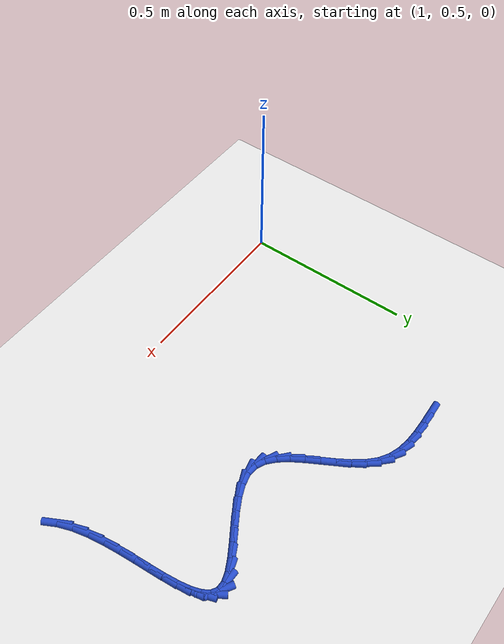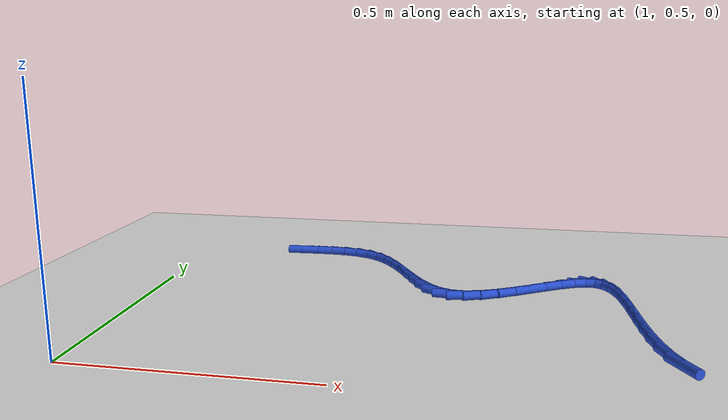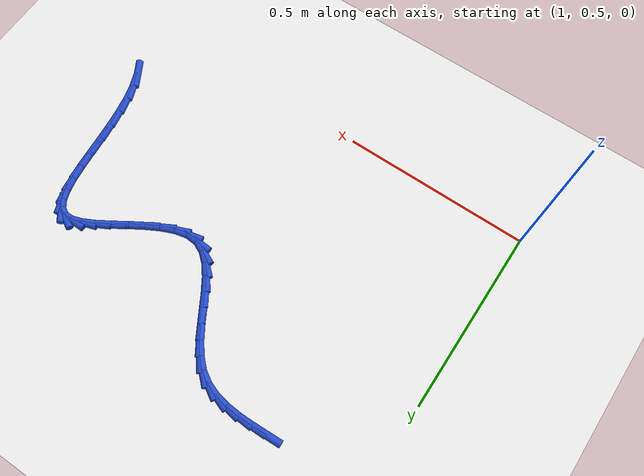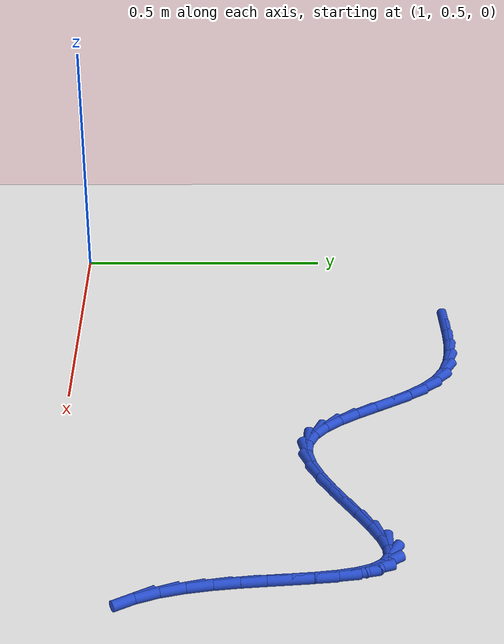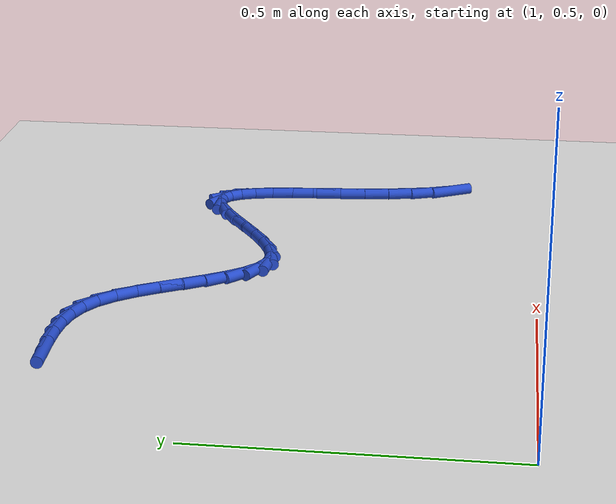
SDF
<sdf version="1.6">
 <world name="default">
  <model name="ground_plane">
   <static>1</static>
   <link name="link">
    <collision name="collision">
     <geometry><plane><normal>0 0 1</normal><size>100 100</size></plane></geometry>
     <surface><friction><ode><mu>100</mu><mu2>50</mu2></ode></friction></surface>
    </collision>
    <visual name="visual">
     <cast_shadows>0</cast_shadows>
     <geometry><plane><normal>0 0 1</normal><size>100 100</size></plane></geometry>
     <material>
      <script><uri>file://media/materials/scripts/gazebo.material</uri><name>Gazebo/WhiteGlow</name></script>
     </material>
    </visual>
   </link>
  </model>
  <model name="line">
   <link name="link_54">
    <pose>1.2547937408275065 1.2537119381579622 0.01 0 1.57 0.04368002936239693</pose>
    <collision name="collision">
     <geometry><cylinder><radius>0.01</radius><length>0.08</length></cylinder></geometry>
    </collision>
    <visual name="visual">
     <material>
      <script><name>Gazebo/Blue</name><uri>file://media/materials/scripts/gazebo.material</uri></script>
     </material>
     <geometry><cylinder><radius>0.01</radius><length>0.08</length></cylinder></geometry>
    </visual>
   </link>
   <link name="link_55">
    <pose>1.293861286342573 1.2554194958066738 0.01 0 1.57 0.007878321877856217</pose>
    <collision name="collision">
     <geometry><cylinder><radius>0.01</radius><length>0.08</length></cylinder></geometry>
    </collision>
    <visual name="visual">
     <material>
      <script><name>Gazebo/Blue</name><uri>file://media/materials/scripts/gazebo.material</uri></script>
     </material>
     <geometry><cylinder><radius>0.01</radius><length>0.08</length></cylinder></geometry>
    </visual>
   </link>
   <link name="link_56">
    <pose>1.3316690879254736 1.2557173639997534 0.01 0 1.57 -0.06508476731705301</pose>
    <collision name="collision">
     <geometry><cylinder><radius>0.01</radius><length>0.08</length></cylinder></geometry>
    </collision>
    <visual name="visual">
     <material>
      <script><name>Gazebo/Blue</name><uri>file://media/materials/scripts/gazebo.material</uri></script>
     </material>
     <geometry><cylinder><radius>0.01</radius><length>0.08</length></cylinder></geometry>
    </visual>
   </link>
   <link name="link_57">
    <pose>1.3678237200091734 1.253360919922937 0.01 0 1.57 -0.1813832845481044</pose>
    <collision name="collision">
     <geometry><cylinder><radius>0.01</radius><length>0.08</length></cylinder></geometry>
    </collision>
    <visual name="visual">
     <material>
      <script><name>Gazebo/Blue</name><uri>file://media/materials/scripts/gazebo.material</uri></script>
     </material>
     <geometry><cylinder><radius>0.01</radius><length>0.08</length></cylinder></geometry>
    </visual>
   </link>
   <link name="link_58">
    <pose>1.4019317570266374 1.2471055407619585 0.01 0 1.57 -0.34551228261787065</pose>
    <collision name="collision">
     <geometry><cylinder><radius>0.01</radius><length>0.08</length></cylinder></geometry>
    </collision>
    <visual name="visual">
     <material>
      <script><name>Gazebo/Blue</name><uri>file://media/materials/scripts/gazebo.material</uri></script>
     </material>
     <geometry><cylinder><radius>0.01</radius><length>0.08</length></cylinder></geometry>
    </visual>
   </link>
   <link name="link_59">
    <pose>1.4335997734108312 1.2357066037025533 0.01 0 1.57 -0.552730054115268</pose>
    <collision name="collision">
     <geometry><cylinder><radius>0.01</radius><length>0.08</length></cylinder></geometry>
    </collision>
    <visual name="visual">
     <material>
      <script><name>Gazebo/Blue</name><uri>file://media/materials/scripts/gazebo.material</uri></script>
     </material>
     <geometry><cylinder><radius>0.01</radius><length>0.08</length></cylinder></geometry>
    </visual>
   </link>
   <link name="link_60">
    <pose>1.4624343435947182 1.2179194859304563 0.01 0 1.57 -0.7675103519102068</pose>
    <collision name="collision">
     <geometry><cylinder><radius>0.01</radius><length>0.08</length></cylinder></geometry>
    </collision>
    <visual name="visual">
     <material>
      <script><name>Gazebo/Blue</name><uri>file://media/materials/scripts/gazebo.material</uri></script>
     </material>
     <geometry><cylinder><radius>0.01</radius><length>0.08</length></cylinder></geometry>
    </visual>
   </link>
   <link name="link_61">
    <pose>1.4882272885885828 1.193033178551508 0.01 0 1.57 -0.9184080681413549</pose>
    <collision name="collision">
     <geometry><cylinder><radius>0.01</radius><length>0.08</length></cylinder></geometry>
    </collision>
    <visual name="visual">
     <material>
      <script><name>Gazebo/Blue</name><uri>file://media/materials/scripts/gazebo.material</uri></script>
     </material>
     <geometry><cylinder><radius>0.01</radius><length>0.08</length></cylinder></geometry>
    </visual>
   </link>
   <link name="link_62">
    <pose>1.511531617426895 1.1625293206081948 0.01 0 1.57 -1.006597355352516</pose>
    <collision name="collision">
     <geometry><cylinder><radius>0.01</radius><length>0.08</length></cylinder></geometry>
    </collision>
    <visual name="visual">
     <material>
      <script><name>Gazebo/Blue</name><uri>file://media/materials/scripts/gazebo.material</uri></script>
     </material>
     <geometry><cylinder><radius>0.01</radius><length>0.08</length></cylinder></geometry>
    </visual>
   </link>
   <link name="link_63">
    <pose>1.5330958235110905 1.128452655632629 0.01 0 1.57 -1.04685684481578</pose>
    <collision name="collision">
     <geometry><cylinder><radius>0.01</radius><length>0.08</length></cylinder></geometry>
    </collision>
    <visual name="visual">
     <material>
      <script><name>Gazebo/Blue</name><uri>file://media/materials/scripts/gazebo.material</uri></script>
     </material>
     <geometry><cylinder><radius>0.01</radius><length>0.08</length></cylinder></geometry>
    </visual>
   </link>
   <link name="link_64">
    <pose>1.5536684003797665 1.0928479275520264 0.01 0 1.57 -1.0456738519528401</pose>
    <collision name="collision">
     <geometry><cylinder><radius>0.01</radius><length>0.08</length></cylinder></geometry>
    </collision>
    <visual name="visual">
     <material>
      <script><name>Gazebo/Blue</name><uri>file://media/materials/scripts/gazebo.material</uri></script>
     </material>
     <geometry><cylinder><radius>0.01</radius><length>0.08</length></cylinder></geometry>
    </visual>
   </link>
   <link name="link_65">
    <pose>1.5739978415715217 1.0577598802936028 0.01 0 1.57 -1.0010958635490124</pose>
    <collision name="collision">
     <geometry><cylinder><radius>0.01</radius><length>0.08</length></cylinder></geometry>
    </collision>
    <visual name="visual">
     <material>
      <script><name>Gazebo/Blue</name><uri>file://media/materials/scripts/gazebo.material</uri></script>
     </material>
     <geometry><cylinder><radius>0.01</radius><length>0.08</length></cylinder></geometry>
    </visual>
   </link>
   <link name="link_66">
    <pose>1.594832640624953 1.0252332577845722 0.01 0 1.57 -0.9014886530146303</pose>
    <collision name="collision">
     <geometry><cylinder><radius>0.01</radius><length>0.08</length></cylinder></geometry>
    </collision>
    <visual name="visual">
     <material>
      <script><name>Gazebo/Blue</name><uri>file://media/materials/scripts/gazebo.material</uri></script>
     </material>
     <geometry><cylinder><radius>0.01</radius><length>0.08</length></cylinder></geometry>
    </visual>
   </link>
   <link name="link_67">
    <pose>1.6169212910786575 0.9973128039521512 0.01 0 1.57 -0.7232775594969701</pose>
    <collision name="collision">
     <geometry><cylinder><radius>0.01</radius><length>0.08</length></cylinder></geometry>
    </collision>
    <visual name="visual">
     <material>
      <script><name>Gazebo/Blue</name><uri>file://media/materials/scripts/gazebo.material</uri></script>
     </material>
     <geometry><cylinder><radius>0.01</radius><length>0.08</length></cylinder></geometry>
    </visual>
   </link>
   <link name="link_68">
    <pose>1.6410122864712335 0.9760432627235544 0.01 0 1.57 -0.4380853083773497</pose>
    <collision name="collision">
     <geometry><cylinder><radius>0.01</radius><length>0.08</length></cylinder></geometry>
    </collision>
    <visual name="visual">
     <material>
      <script><name>Gazebo/Blue</name><uri>file://media/materials/scripts/gazebo.material</uri></script>
     </material>
     <geometry><cylinder><radius>0.01</radius><length>0.08</length></cylinder></geometry>
    </visual>
   </link>
   <link name="link_69">
    <pose>1.6678541203412771 0.9634693780259969 0.01 0 1.57 -0.06837614948621258</pose>
    <collision name="collision">
     <geometry><cylinder><radius>0.01</radius><length>0.08</length></cylinder></geometry>
    </collision>
    <visual name="visual">
     <material>
      <script><name>Gazebo/Blue</name><uri>file://media/materials/scripts/gazebo.material</uri></script>
     </material>
     <geometry><cylinder><radius>0.01</radius><length>0.08</length></cylinder></geometry>
    </visual>
   </link>
   <link name="link_70">
    <pose>1.6981020600475365 0.961397911130792 0.01 0 1.57 0.22588829474566882</pose>
    <collision name="collision">
     <geometry><cylinder><radius>0.01</radius><length>0.08</length></cylinder></geometry>
    </collision>
    <visual name="visual">
     <material>
      <script><name>Gazebo/Blue</name><uri>file://media/materials/scripts/gazebo.material</uri></script>
     </material>
     <geometry><cylinder><radius>0.01</radius><length>0.08</length></cylinder></geometry>
    </visual>
   </link>
   <link name="link_71">
    <pose>1.7313983974820142 0.9690497553446311 0.01 0 1.57 0.4013756108138547</pose>
    <collision name="collision">
     <geometry><cylinder><radius>0.01</radius><length>0.08</length></cylinder></geometry>
    </collision>
    <visual name="visual">
     <material>
      <script><name>Gazebo/Blue</name><uri>file://media/materials/scripts/gazebo.material</uri></script>
     </material>
     <geometry><cylinder><radius>0.01</radius><length>0.08</length></cylinder></geometry>
    </visual>
   </link>
   <link name="link_72">
    <pose>1.7667640026262244 0.9840594723565018 0.01 0 1.57 0.5014404017447036</pose>
    <collision name="collision">
     <geometry><cylinder><radius>0.01</radius><length>0.08</length></cylinder></geometry>
    </collision>
    <visual name="visual">
     <material>
      <script><name>Gazebo/Blue</name><uri>file://media/materials/scripts/gazebo.material</uri></script>
     </material>
     <geometry><cylinder><radius>0.01</radius><length>0.08</length></cylinder></geometry>
    </visual>
   </link>
   <link name="link_73">
    <pose>1.8032107400086634 1.0040386352310642 0.01 0 1.57 0.5531263669385046</pose>
    <collision name="collision">
     <geometry><cylinder><radius>0.01</radius><length>0.08</length></cylinder></geometry>
    </collision>
    <visual name="visual">
     <material>
      <script><name>Gazebo/Blue</name><uri>file://media/materials/scripts/gazebo.material</uri></script>
     </material>
     <geometry><cylinder><radius>0.01</radius><length>0.08</length></cylinder></geometry>
    </visual>
   </link>
   <link name="link_74">
    <pose>1.839750474157831 1.0265988170329803 0.01 0 1.57 0.5681227592600654</pose>
    <collision name="collision">
     <geometry><cylinder><radius>0.01</radius><length>0.08</length></cylinder></geometry>
    </collision>
    <visual name="visual">
     <material>
      <script><name>Gazebo/Blue</name><uri>file://media/materials/scripts/gazebo.material</uri></script>
     </material>
     <geometry><cylinder><radius>0.01</radius><length>0.08</length></cylinder></geometry>
    </visual>
   </link>
   <link name="link_75">
    <pose>1.875395069602224 1.0493515908269098 0.01 0 1.57 0.546930807195572</pose>
    <collision name="collision">
     <geometry><cylinder><radius>0.01</radius><length>0.08</length></cylinder></geometry>
    </collision>
    <visual name="visual">
     <material>
      <script><name>Gazebo/Blue</name><uri>file://media/materials/scripts/gazebo.material</uri></script>
     </material>
     <geometry><cylinder><radius>0.01</radius><length>0.08</length></cylinder></geometry>
    </visual>
   </link>
   <link name="link_76">
    <pose>1.9091563908703408 1.0699085296775148 0.01 0 1.57 0.47722115970566964</pose>
    <collision name="collision">
     <geometry><cylinder><radius>0.01</radius><length>0.08</length></cylinder></geometry>
    </collision>
    <visual name="visual">
     <material>
      <script><name>Gazebo/Blue</name><uri>file://media/materials/scripts/gazebo.material</uri></script>
     </material>
     <geometry><cylinder><radius>0.01</radius><length>0.08</length></cylinder></geometry>
    </visual>
   </link>
   <link name="link_77">
    <pose>1.9400463024906793 1.0858812066494556 0.01 0 1.57 0.3214130956437211</pose>
    <collision name="collision">
     <geometry><cylinder><radius>0.01</radius><length>0.08</length></cylinder></geometry>
    </collision>
    <visual name="visual">
     <material>
      <script><name>Gazebo/Blue</name><uri>file://media/materials/scripts/gazebo.material</uri></script>
     </material>
     <geometry><cylinder><radius>0.01</radius><length>0.08</length></cylinder></geometry>
    </visual>
   </link>
   <link name="link_78">
    <pose>1.9670766689917385 1.0948811948073935 0.01 0 1.57 -0.013762797381323721</pose>
    <collision name="collision">
     <geometry><cylinder><radius>0.01</radius><length>0.08</length></cylinder></geometry>
    </collision>
    <visual name="visual">
     <material>
      <script><name>Gazebo/Blue</name><uri>file://media/materials/scripts/gazebo.material</uri></script>
     </material>
     <geometry><cylinder><radius>0.01</radius><length>0.08</length></cylinder></geometry>
    </visual>
   </link>
   <link name="link_79">
    <pose>1.9892865212927069 1.0945755058094102 0.01 0 1.57 -0.5393988779090308</pose>
    <collision name="collision">
     <geometry><cylinder><radius>0.01</radius><length>0.08</length></cylinder></geometry>
    </collision>
    <visual name="visual">
     <material>
      <script><name>Gazebo/Blue</name><uri>file://media/materials/scripts/gazebo.material</uri></script>
     </material>
     <geometry><cylinder><radius>0.01</radius><length>0.08</length></cylinder></geometry>
    </visual>
   </link>
   <link name="link_80">
    <pose>2.0065143856792838 1.0842626856263307 0.01 0 1.57 -0.9749055667430588</pose>
    <collision name="collision">
     <geometry><cylinder><radius>0.01</radius><length>0.08</length></cylinder></geometry>
    </collision>
    <visual name="visual">
     <material>
      <script><name>Gazebo/Blue</name><uri>file://media/materials/scripts/gazebo.material</uri></script>
     </material>
     <geometry><cylinder><radius>0.01</radius><length>0.08</length></cylinder></geometry>
    </visual>
   </link>
   <link name="link_81">
    <pose>2.019509357893496 1.0650994840089707 0.01 0 1.57 -1.2276058371876564</pose>
    <collision name="collision">
     <geometry><cylinder><radius>0.01</radius><length>0.08</length></cylinder></geometry>
    </collision>
    <visual name="visual">
     <material>
      <script><name>Gazebo/Blue</name><uri>file://media/materials/scripts/gazebo.material</uri></script>
     </material>
     <geometry><cylinder><radius>0.01</radius><length>0.08</length></cylinder></geometry>
    </visual>
   </link>
   <link name="link_82">
    <pose>2.0290700328039426 1.0383436638307195 0.01 0 1.57 -1.3645008906678442</pose>
    <collision name="collision">
     <geometry><cylinder><radius>0.01</radius><length>0.08</length></cylinder></geometry>
    </collision>
    <visual name="visual">
     <material>
      <script><name>Gazebo/Blue</name><uri>file://media/materials/scripts/gazebo.material</uri></script>
     </material>
     <geometry><cylinder><radius>0.01</radius><length>0.08</length></cylinder></geometry>
    </visual>
   </link>
   <link name="link_83">
    <pose>2.0359950052792226 1.0052529879649639 0.01 0 1.57 -1.4382749368740024</pose>
    <collision name="collision">
     <geometry><cylinder><radius>0.01</radius><length>0.08</length></cylinder></geometry>
    </collision>
    <visual name="visual">
     <material>
      <script><name>Gazebo/Blue</name><uri>file://media/materials/scripts/gazebo.material</uri></script>
     </material>
     <geometry><cylinder><radius>0.01</radius><length>0.08</length></cylinder></geometry>
    </visual>
   </link>
   <link name="link_84">
    <pose>2.041082870187934 0.9670852192850932 0.01 0 1.57 -1.4746509077931629</pose>
    <collision name="collision">
     <geometry><cylinder><radius>0.01</radius><length>0.08</length></cylinder></geometry>
    </collision>
    <visual name="visual">
     <material>
      <script><name>Gazebo/Blue</name><uri>file://media/materials/scripts/gazebo.material</uri></script>
     </material>
     <geometry><cylinder><radius>0.01</radius><length>0.08</length></cylinder></geometry>
    </visual>
   </link>
   <link name="link_85">
    <pose>2.0451322223986765 0.9250981206644946 0.01 0 1.57 -1.4854920947221535</pose>
    <collision name="collision">
     <geometry><cylinder><radius>0.01</radius><length>0.08</length></cylinder></geometry>
    </collision>
    <visual name="visual">
     <material>
      <script><name>Gazebo/Blue</name><uri>file://media/materials/scripts/gazebo.material</uri></script>
     </material>
     <geometry><cylinder><radius>0.01</radius><length>0.08</length></cylinder></geometry>
    </visual>
   </link>
   <link name="link_86">
    <pose>2.0489416567800487 0.8805494549765572 0.01 0 1.57 -1.4758184789606819</pose>
    <collision name="collision">
     <geometry><cylinder><radius>0.01</radius><length>0.08</length></cylinder></geometry>
    </collision>
    <visual name="visual">
     <material>
      <script><name>Gazebo/Blue</name><uri>file://media/materials/scripts/gazebo.material</uri></script>
     </material>
     <geometry><cylinder><radius>0.01</radius><length>0.08</length></cylinder></geometry>
    </visual>
   </link>
   <link name="link_87">
    <pose>2.05330976820065 0.8346969850946683 0.01 0 1.57 -1.4466972751943212</pose>
    <collision name="collision">
     <geometry><cylinder><radius>0.01</radius><length>0.08</length></cylinder></geometry>
    </collision>
    <visual name="visual">
     <material>
      <script><name>Gazebo/Blue</name><uri>file://media/materials/scripts/gazebo.material</uri></script>
     </material>
     <geometry><cylinder><radius>0.01</radius><length>0.08</length></cylinder></geometry>
    </visual>
   </link>
   <link name="link_88">
    <pose>2.0590351515290783 0.7887984738922171 0.01 0 1.57 -1.3962251302498507</pose>
    <collision name="collision">
     <geometry><cylinder><radius>0.01</radius><length>0.08</length></cylinder></geometry>
    </collision>
    <visual name="visual">
     <material>
      <script><name>Gazebo/Blue</name><uri>file://media/materials/scripts/gazebo.material</uri></script>
     </material>
     <geometry><cylinder><radius>0.01</radius><length>0.08</length></cylinder></geometry>
    </visual>
   </link>
   <link name="link_89">
    <pose>2.066916401633933 0.7441116842425909 0.01 0 1.57 -1.3195544685399225</pose>
    <collision name="collision">
     <geometry><cylinder><radius>0.01</radius><length>0.08</length></cylinder></geometry>
    </collision>
    <visual name="visual">
     <material>
      <script><name>Gazebo/Blue</name><uri>file://media/materials/scripts/gazebo.material</uri></script>
     </material>
     <geometry><cylinder><radius>0.01</radius><length>0.08</length></cylinder></geometry>
    </visual>
   </link>
   <link name="link_90">
    <pose>2.0777521133838133 0.7018943790191785 0.01 0 1.57 -1.208501838652621</pose>
    <collision name="collision">
     <geometry><cylinder><radius>0.01</radius><length>0.08</length></cylinder></geometry>
    </collision>
    <visual name="visual">
     <material>
      <script><name>Gazebo/Blue</name><uri>file://media/materials/scripts/gazebo.material</uri></script>
     </material>
     <geometry><cylinder><radius>0.01</radius><length>0.08</length></cylinder></geometry>
    </visual>
   </link>
   <link name="link_91">
    <pose>2.0923408195780473 0.6634042579586165 0.01 0 1.57 -1.0694589636258731</pose>
    <collision name="collision">
     <geometry><cylinder><radius>0.01</radius><length>0.08</length></cylinder></geometry>
    </collision>
    <visual name="visual">
     <material>
      <script><name>Gazebo/Blue</name><uri>file://media/materials/scripts/gazebo.material</uri></script>
     </material>
     <geometry><cylinder><radius>0.01</radius><length>0.08</length></cylinder></geometry>
    </visual>
   </link>
  </model>
 </world>
</sdf>
